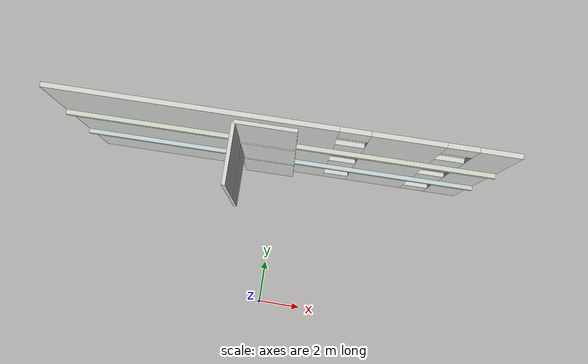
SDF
<sdf version="1.6">
 <world name="three_floor">
  <model name="f1_wall_003">
   <static>true</static>
   <pose>0 6.9 1.5 0 0 0</pose>
   <link name="f1_wall_003_link">
    <collision name="f1_wall_003_link_panel_0_collision">
     <pose>-3.4 0 0 0 0 0</pose>
     <geometry><box><size>11.2 0.2 3</size></box></geometry>
    </collision>
    <visual name="f1_wall_003_link_panel_0_visual">
     <pose>-3.4 0 0 0 0 0</pose>
     <geometry><box><size>11.2 0.2 3</size></box></geometry>
     <material><ambient>.84 .85 .83 1</ambient><diffuse>.84 .85 .83 1</diffuse></material>
    </visual>
    <collision name="f1_wall_003_link_sill_0_collision">
     <pose>2.8 0 -1.025 0 0 0</pose>
     <geometry><box><size>1.2 0.2 0.95</size></box></geometry>
    </collision>
    <visual name="f1_wall_003_link_sill_0_visual">
     <pose>2.8 0 -1.025 0 0 0</pose>
     <geometry><box><size>1.2 0.2 0.95</size></box></geometry>
     <material><ambient>.84 .85 .83 1</ambient><diffuse>.84 .85 .83 1</diffuse></material>
    </visual>
    <collision name="f1_wall_003_link_header_0_collision">
     <pose>2.8 0 1 0 0 0</pose>
     <geometry><box><size>1.2 0.2 1</size></box></geometry>
    </collision>
    <visual name="f1_wall_003_link_header_0_visual">
     <pose>2.8 0 1 0 0 0</pose>
     <geometry><box><size>1.2 0.2 1</size></box></geometry>
     <material><ambient>.84 .85 .83 1</ambient><diffuse>.84 .85 .83 1</diffuse></material>
    </visual>
    <collision name="f1_wall_003_link_panel_1_collision">
     <pose>4.8 0 0 0 0 0</pose>
     <geometry><box><size>2.8 0.2 3</size></box></geometry>
    </collision>
    <visual name="f1_wall_003_link_panel_1_visual">
     <pose>4.8 0 0 0 0 0</pose>
     <geometry><box><size>2.8 0.2 3</size></box></geometry>
     <material><ambient>.84 .85 .83 1</ambient><diffuse>.84 .85 .83 1</diffuse></material>
    </visual>
    <collision name="f1_wall_003_link_sill_1_collision">
     <pose>6.8 0 -1.025 0 0 0</pose>
     <geometry><box><size>1.2 0.2 0.95</size></box></geometry>
    </collision>
    <visual name="f1_wall_003_link_sill_1_visual">
     <pose>6.8 0 -1.025 0 0 0</pose>
     <geometry><box><size>1.2 0.2 0.95</size></box></geometry>
     <material><ambient>.84 .85 .83 1</ambient><diffuse>.84 .85 .83 1</diffuse></material>
    </visual>
    <collision name="f1_wall_003_link_header_1_collision">
     <pose>6.8 0 1 0 0 0</pose>
     <geometry><box><size>1.2 0.2 1</size></box></geometry>
    </collision>
    <visual name="f1_wall_003_link_header_1_visual">
     <pose>6.8 0 1 0 0 0</pose>
     <geometry><box><size>1.2 0.2 1</size></box></geometry>
     <material><ambient>.84 .85 .83 1</ambient><diffuse>.84 .85 .83 1</diffuse></material>
    </visual>
    <collision name="f1_wall_003_link_last_panel_collision">
     <pose>8.2 0 0 0 0 0</pose>
     <geometry><box><size>1.6 0.2 3</size></box></geometry>
    </collision>
    <visual name="f1_wall_003_link_last_panel_visual">
     <pose>8.2 0 0 0 0 0</pose>
     <geometry><box><size>1.6 0.2 3</size></box></geometry>
     <material><ambient>.84 .85 .83 1</ambient><diffuse>.84 .85 .83 1</diffuse></material>
    </visual>
   </link>
  </model>
  <model name="f1_wall_035">
   <static>true</static>
   <pose>-0.5 6.6 1.5 0 0 0</pose>
   <link name="f1_wall_035_link">
    <collision name="f1_wall_035_collision"><geometry><box><size>2.4 0.15 3</size></box></geometry></collision>
    <visual name="f1_wall_035_visual">
     <geometry><box><size>2.4 0.15 3</size></box></geometry>
     <material><ambient>.84 .85 .83 1</ambient><diffuse>.84 .85 .83 1</diffuse></material>
    </visual>
   </link>
  </model>
  <model name="f2_slab_06">
   <static>true</static>
   <pose>0 6.8 3.1 0 0 0</pose>
   <link name="f2_slab_06_link">
    <collision name="f2_slab_06_collision"><geometry><box><size>18 0.4 0.2</size></box></geometry></collision>
    <visual name="f2_slab_06_visual">
     <geometry><box><size>18 0.4 0.2</size></box></geometry>
     <material><ambient>0.77 0.83 0.85 1</ambient><diffuse>0.77 0.83 0.85 1</diffuse></material>
    </visual>
   </link>
  </model>
  <model name="f2_wall_008">
   <static>true</static>
   <pose>0 6.9 4.7 0 0 0</pose>
   <link name="f2_wall_008_link">
    <collision name="f2_wall_008_link_panel_0_collision">
     <pose>-3.4 0 0 0 0 0</pose>
     <geometry><box><size>11.2 0.2 3</size></box></geometry>
    </collision>
    <visual name="f2_wall_008_link_panel_0_visual">
     <pose>-3.4 0 0 0 0 0</pose>
     <geometry><box><size>11.2 0.2 3</size></box></geometry>
     <material><ambient>.84 .85 .83 1</ambient><diffuse>.84 .85 .83 1</diffuse></material>
    </visual>
    <collision name="f2_wall_008_link_sill_0_collision">
     <pose>2.8 0 -1.025 0 0 0</pose>
     <geometry><box><size>1.2 0.2 0.95</size></box></geometry>
    </collision>
    <visual name="f2_wall_008_link_sill_0_visual">
     <pose>2.8 0 -1.025 0 0 0</pose>
     <geometry><box><size>1.2 0.2 0.95</size></box></geometry>
     <material><ambient>.84 .85 .83 1</ambient><diffuse>.84 .85 .83 1</diffuse></material>
    </visual>
    <collision name="f2_wall_008_link_header_0_collision">
     <pose>2.8 0 1 0 0 0</pose>
     <geometry><box><size>1.2 0.2 1</size></box></geometry>
    </collision>
    <visual name="f2_wall_008_link_header_0_visual">
     <pose>2.8 0 1 0 0 0</pose>
     <geometry><box><size>1.2 0.2 1</size></box></geometry>
     <material><ambient>.84 .85 .83 1</ambient><diffuse>.84 .85 .83 1</diffuse></material>
    </visual>
    <collision name="f2_wall_008_link_panel_1_collision">
     <pose>4.8 0 0 0 0 0</pose>
     <geometry><box><size>2.8 0.2 3</size></box></geometry>
    </collision>
    <visual name="f2_wall_008_link_panel_1_visual">
     <pose>4.8 0 0 0 0 0</pose>
     <geometry><box><size>2.8 0.2 3</size></box></geometry>
     <material><ambient>.84 .85 .83 1</ambient><diffuse>.84 .85 .83 1</diffuse></material>
    </visual>
    <collision name="f2_wall_008_link_sill_1_collision">
     <pose>6.8 0 -1.025 0 0 0</pose>
     <geometry><box><size>1.2 0.2 0.95</size></box></geometry>
    </collision>
    <visual name="f2_wall_008_link_sill_1_visual">
     <pose>6.8 0 -1.025 0 0 0</pose>
     <geometry><box><size>1.2 0.2 0.95</size></box></geometry>
     <material><ambient>.84 .85 .83 1</ambient><diffuse>.84 .85 .83 1</diffuse></material>
    </visual>
    <collision name="f2_wall_008_link_header_1_collision">
     <pose>6.8 0 1 0 0 0</pose>
     <geometry><box><size>1.2 0.2 1</size></box></geometry>
    </collision>
    <visual name="f2_wall_008_link_header_1_visual">
     <pose>6.8 0 1 0 0 0</pose>
     <geometry><box><size>1.2 0.2 1</size></box></geometry>
     <material><ambient>.84 .85 .83 1</ambient><diffuse>.84 .85 .83 1</diffuse></material>
    </visual>
    <collision name="f2_wall_008_link_last_panel_collision">
     <pose>8.2 0 0 0 0 0</pose>
     <geometry><box><size>1.6 0.2 3</size></box></geometry>
    </collision>
    <visual name="f2_wall_008_link_last_panel_visual">
     <pose>8.2 0 0 0 0 0</pose>
     <geometry><box><size>1.6 0.2 3</size></box></geometry>
     <material><ambient>.84 .85 .83 1</ambient><diffuse>.84 .85 .83 1</diffuse></material>
    </visual>
   </link>
  </model>
  <model name="f2_wall_033">
   <static>true</static>
   <pose>-1.7 5.4 4.7 0 0 0</pose>
   <link name="f2_wall_033_link">
    <collision name="f2_wall_033_collision"><geometry><box><size>0.15 2.4 3</size></box></geometry></collision>
    <visual name="f2_wall_033_visual">
     <geometry><box><size>0.15 2.4 3</size></box></geometry>
     <material><ambient>.84 .85 .83 1</ambient><diffuse>.84 .85 .83 1</diffuse></material>
    </visual>
   </link>
  </model>
  <model name="f2_wall_035">
   <static>true</static>
   <pose>-0.5 6.6 4.7 0 0 0</pose>
   <link name="f2_wall_035_link">
    <collision name="f2_wall_035_collision"><geometry><box><size>2.4 0.15 3</size></box></geometry></collision>
    <visual name="f2_wall_035_visual">
     <geometry><box><size>2.4 0.15 3</size></box></geometry>
     <material><ambient>.84 .85 .83 1</ambient><diffuse>.84 .85 .83 1</diffuse></material>
    </visual>
   </link>
  </model>
  <model name="f3_slab_06">
   <static>true</static>
   <pose>0 6.8 6.3 0 0 0</pose>
   <link name="f3_slab_06_link">
    <collision name="f3_slab_06_collision"><geometry><box><size>18 0.4 0.2</size></box></geometry></collision>
    <visual name="f3_slab_06_visual">
     <geometry><box><size>18 0.4 0.2</size></box></geometry>
     <material><ambient>0.82 0.85 0.78 1</ambient><diffuse>0.82 0.85 0.78 1</diffuse></material>
    </visual>
   </link>
  </model>
  <model name="f3_wall_012">
   <static>true</static>
   <pose>0 6.9 7.9 0 0 0</pose>
   <link name="f3_wall_012_link">
    <collision name="f3_wall_012_link_panel_0_collision">
     <pose>-3.4 0 0 0 0 0</pose>
     <geometry><box><size>11.2 0.2 3</size></box></geometry>
    </collision>
    <visual name="f3_wall_012_link_panel_0_visual">
     <pose>-3.4 0 0 0 0 0</pose>
     <geometry><box><size>11.2 0.2 3</size></box></geometry>
     <material><ambient>.84 .85 .83 1</ambient><diffuse>.84 .85 .83 1</diffuse></material>
    </visual>
    <collision name="f3_wall_012_link_sill_0_collision">
     <pose>2.8 0 -1.025 0 0 0</pose>
     <geometry><box><size>1.2 0.2 0.95</size></box></geometry>
    </collision>
    <visual name="f3_wall_012_link_sill_0_visual">
     <pose>2.8 0 -1.025 0 0 0</pose>
     <geometry><box><size>1.2 0.2 0.95</size></box></geometry>
     <material><ambient>.84 .85 .83 1</ambient><diffuse>.84 .85 .83 1</diffuse></material>
    </visual>
    <collision name="f3_wall_012_link_header_0_collision">
     <pose>2.8 0 1 0 0 0</pose>
     <geometry><box><size>1.2 0.2 1</size></box></geometry>
    </collision>
    <visual name="f3_wall_012_link_header_0_visual">
     <pose>2.8 0 1 0 0 0</pose>
     <geometry><box><size>1.2 0.2 1</size></box></geometry>
     <material><ambient>.84 .85 .83 1</ambient><diffuse>.84 .85 .83 1</diffuse></material>
    </visual>
    <collision name="f3_wall_012_link_panel_1_collision">
     <pose>4.8 0 0 0 0 0</pose>
     <geometry><box><size>2.8 0.2 3</size></box></geometry>
    </collision>
    <visual name="f3_wall_012_link_panel_1_visual">
     <pose>4.8 0 0 0 0 0</pose>
     <geometry><box><size>2.8 0.2 3</size></box></geometry>
     <material><ambient>.84 .85 .83 1</ambient><diffuse>.84 .85 .83 1</diffuse></material>
    </visual>
    <collision name="f3_wall_012_link_sill_1_collision">
     <pose>6.8 0 -1.025 0 0 0</pose>
     <geometry><box><size>1.2 0.2 0.95</size></box></geometry>
    </collision>
    <visual name="f3_wall_012_link_sill_1_visual">
     <pose>6.8 0 -1.025 0 0 0</pose>
     <geometry><box><size>1.2 0.2 0.95</size></box></geometry>
     <material><ambient>.84 .85 .83 1</ambient><diffuse>.84 .85 .83 1</diffuse></material>
    </visual>
    <collision name="f3_wall_012_link_header_1_collision">
     <pose>6.8 0 1 0 0 0</pose>
     <geometry><box><size>1.2 0.2 1</size></box></geometry>
    </collision>
    <visual name="f3_wall_012_link_header_1_visual">
     <pose>6.8 0 1 0 0 0</pose>
     <geometry><box><size>1.2 0.2 1</size></box></geometry>
     <material><ambient>.84 .85 .83 1</ambient><diffuse>.84 .85 .83 1</diffuse></material>
    </visual>
    <collision name="f3_wall_012_link_last_panel_collision">
     <pose>8.2 0 0 0 0 0</pose>
     <geometry><box><size>1.6 0.2 3</size></box></geometry>
    </collision>
    <visual name="f3_wall_012_link_last_panel_visual">
     <pose>8.2 0 0 0 0 0</pose>
     <geometry><box><size>1.6 0.2 3</size></box></geometry>
     <material><ambient>.84 .85 .83 1</ambient><diffuse>.84 .85 .83 1</diffuse></material>
    </visual>
   </link>
  </model>
  <model name="f3_wall_033">
   <static>true</static>
   <pose>-1.7 5.4 7.9 0 0 0</pose>
   <link name="f3_wall_033_link">
    <collision name="f3_wall_033_collision"><geometry><box><size>0.15 2.4 3</size></box></geometry></collision>
    <visual name="f3_wall_033_visual">
     <geometry><box><size>0.15 2.4 3</size></box></geometry>
     <material><ambient>.84 .85 .83 1</ambient><diffuse>.84 .85 .83 1</diffuse></material>
    </visual>
   </link>
  </model>
  <model name="f3_wall_035">
   <static>true</static>
   <pose>-0.5 6.6 7.9 0 0 0</pose>
   <link name="f3_wall_035_link">
    <collision name="f3_wall_035_collision"><geometry><box><size>2.4 0.15 3</size></box></geometry></collision>
    <visual name="f3_wall_035_visual">
     <geometry><box><size>2.4 0.15 3</size></box></geometry>
     <material><ambient>.84 .85 .83 1</ambient><diffuse>.84 .85 .83 1</diffuse></material>
    </visual>
   </link>
  </model>
 </world>
</sdf>
